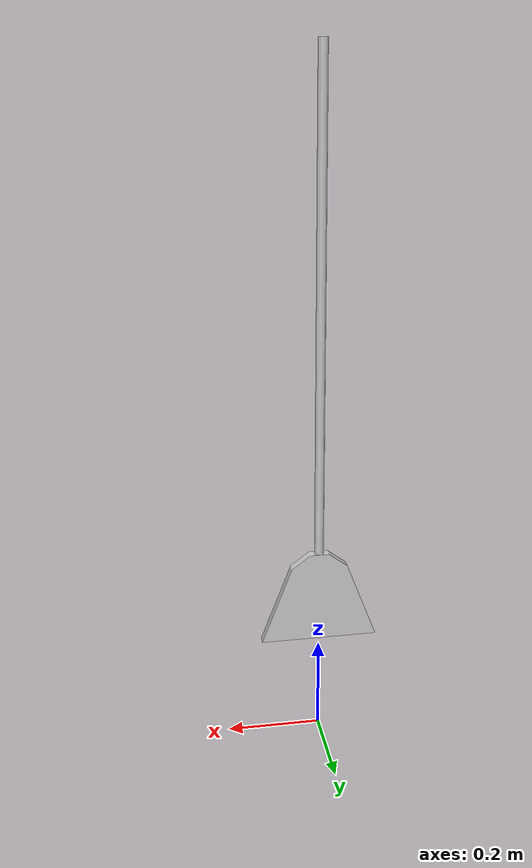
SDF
<?xml version='1.0'?>
<sdf version='1.3'>
  <model name='broom'>
    <static>false</static>
    <link name='broom'>
      <pose>0 0 0.07 0 0 0</pose>

      <inertial>
        <pose>0 0 0.15 0 0 0</pose>
        <mass>3.0</mass>
        <inertia>
          <ixx>0.0601875</ixx>
          <ixy>0</ixy>
          <ixz>0</ixz>
          <iyy>0.0601875</iyy>
          <iyz>0</iyz>
          <izz>0.120225</izz>
        </inertia>
      </inertial>

      <collision name="default">
        <pose>0 0 0.15 0 0 0</pose>
        <geometry>
          <mesh>
            <uri>model://broom/meshes/broom.dae</uri>
          </mesh>
        </geometry>
      </collision>

      <visual name="default">
        <pose>0 0 0.15 0 0 0</pose>
        <geometry>
          <mesh>
            <uri>model://broom/meshes/broom.dae</uri>
          </mesh>
        </geometry>
      </visual>
    </link>

  </model>
</sdf>
